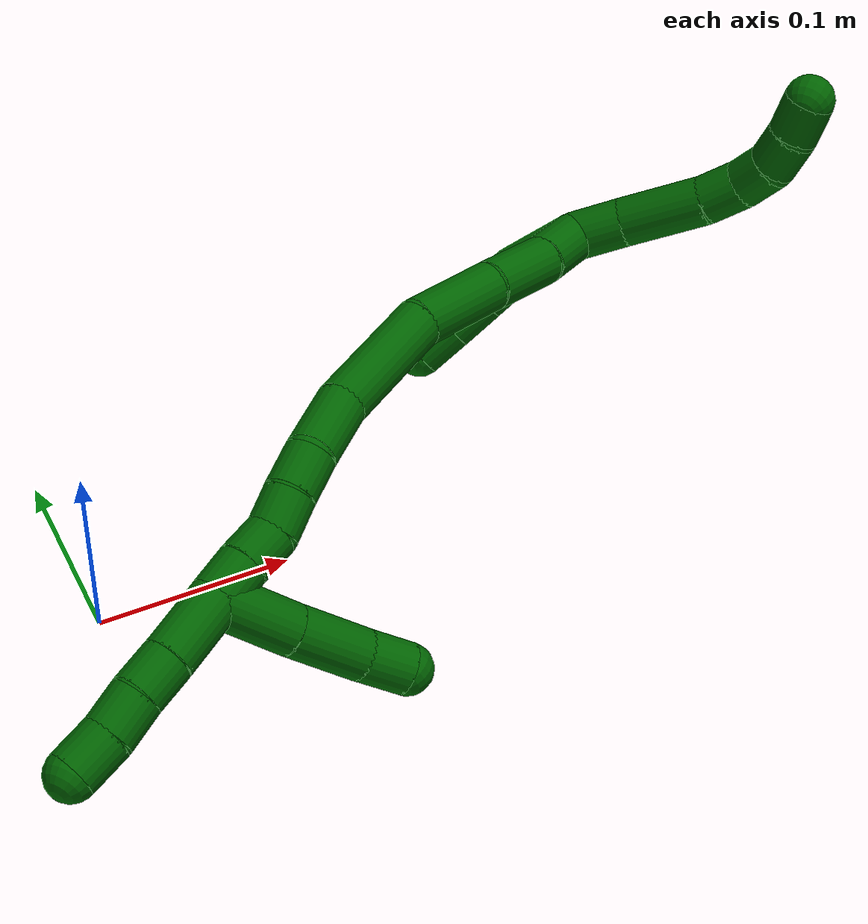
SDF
<sdf version="1.7">
 <world name="default">
  <model name="6">
   <static>0</static>
   <link name="6">
    <collision name="collision-cylinder-e_1_2_8">
     <pose>0.007348 -0.008706 0.006571 0.924258 0.592847 0.301948</pose>
     <geometry><cylinder><radius>0.0125</radius><length>0.026303</length></cylinder></geometry>
     <surface>
      <friction><ode><mu>1.16</mu><mu2>1.16</mu2><slip1>0</slip1><slip2>0</slip2></ode></friction>
      <contact><ode><kp>1e+06</kp><kd>1</kd><max_vel>0</max_vel><min_depth>0.001</min_depth></ode></contact>
     </surface>
    </collision>
    <visual name="visual-cylinder-e_1_2_8">
     <pose>0.007348 -0.008706 0.006571 0.924258 0.592847 0.301948</pose>
     <geometry><cylinder><radius>0.0125</radius><length>0.026303</length></cylinder></geometry>
     <material><ambient>0 0.392157 0.003922 1</ambient></material>
    </visual>
    <collision name="collision-cylinder-e_2_8_9">
     <pose>0.026123 -0.033884 0.021192 1.11623 0.557335 0.353525</pose>
     <geometry><cylinder><radius>0.0125</radius><length>0.043208</length></cylinder></geometry>
     <surface>
      <friction><ode><mu>1.16</mu><mu2>1.16</mu2><slip1>0</slip1><slip2>0</slip2></ode></friction>
      <contact><ode><kp>1e+06</kp><kd>1</kd><max_vel>0</max_vel><min_depth>0.001</min_depth></ode></contact>
     </surface>
    </collision>
    <visual name="visual-cylinder-e_2_8_9">
     <pose>0.026123 -0.033884 0.021192 1.11623 0.557335 0.353525</pose>
     <geometry><cylinder><radius>0.0125</radius><length>0.043208</length></cylinder></geometry>
     <material><ambient>0 0.392157 0.003922 1</ambient></material>
    </visual>
    <collision name="collision-cylinder-e_3_9_10">
     <pose>0.041683 -0.058582 0.033689 1.07522 0.416178 0.250447</pose>
     <geometry><cylinder><radius>0.0125</radius><length>0.020446</length></cylinder></geometry>
     <surface>
      <friction><ode><mu>1.16</mu><mu2>1.16</mu2><slip1>0</slip1><slip2>0</slip2></ode></friction>
      <contact><ode><kp>1e+06</kp><kd>1</kd><max_vel>0</max_vel><min_depth>0.001</min_depth></ode></contact>
     </surface>
    </collision>
    <visual name="visual-cylinder-e_3_9_10">
     <pose>0.041683 -0.058582 0.033689 1.07522 0.416178 0.250447</pose>
     <geometry><cylinder><radius>0.0125</radius><length>0.020446</length></cylinder></geometry>
     <material><ambient>0 0.392157 0.003922 1</ambient></material>
    </visual>
    <collision name="collision-cylinder-e_4_10_11">
     <pose>0.047541 -0.07638 0.04047 1.33151 0.173344 0.13627</pose>
     <geometry><cylinder><radius>0.0125</radius><length>0.020005</length></cylinder></geometry>
     <surface>
      <friction><ode><mu>1.16</mu><mu2>1.16</mu2><slip1>0</slip1><slip2>0</slip2></ode></friction>
      <contact><ode><kp>1e+06</kp><kd>1</kd><max_vel>0</max_vel><min_depth>0.001</min_depth></ode></contact>
     </surface>
    </collision>
    <visual name="visual-cylinder-e_4_10_11">
     <pose>0.047541 -0.07638 0.04047 1.33151 0.173344 0.13627</pose>
     <geometry><cylinder><radius>0.0125</radius><length>0.020005</length></cylinder></geometry>
     <material><ambient>0 0.392157 0.003922 1</ambient></material>
    </visual>
    <collision name="collision-cylinder-e_5_11_12">
     <pose>0.0477 -0.095319 0.045993 1.24275 -0.156939 -0.112478</pose>
     <geometry><cylinder><radius>0.0125</radius><length>0.020037</length></cylinder></geometry>
     <surface>
      <friction><ode><mu>1.16</mu><mu2>1.16</mu2><slip1>0</slip1><slip2>0</slip2></ode></friction>
      <contact><ode><kp>1e+06</kp><kd>1</kd><max_vel>0</max_vel><min_depth>0.001</min_depth></ode></contact>
     </surface>
    </collision>
    <visual name="visual-cylinder-e_5_11_12">
     <pose>0.0477 -0.095319 0.045993 1.24275 -0.156939 -0.112478</pose>
     <geometry><cylinder><radius>0.0125</radius><length>0.020037</length></cylinder></geometry>
     <material><ambient>0 0.392157 0.003922 1</ambient></material>
    </visual>
    <collision name="collision-cylinder-e_6_12_6">
     <pose>0.043222 -0.113322 0.053301 1.12569 -0.29547 -0.187236</pose>
     <geometry><cylinder><radius>0.0125</radius><length>0.020002</length></cylinder></geometry>
     <surface>
      <friction><ode><mu>1.16</mu><mu2>1.16</mu2><slip1>0</slip1><slip2>0</slip2></ode></friction>
      <contact><ode><kp>1e+06</kp><kd>1</kd><max_vel>0</max_vel><min_depth>0.001</min_depth></ode></contact>
     </surface>
    </collision>
    <visual name="visual-cylinder-e_6_12_6">
     <pose>0.043222 -0.113322 0.053301 1.12569 -0.29547 -0.187236</pose>
     <geometry><cylinder><radius>0.0125</radius><length>0.020002</length></cylinder></geometry>
     <material><ambient>0 0.392157 0.003922 1</ambient></material>
    </visual>
    <collision name="collision-cylinder-e_1_2_13">
     <pose>-0.006127 0.013295 -0.00979 -2.20555 -0.355361 0.6827</pose>
     <geometry><cylinder><radius>0.0125</radius><length>0.035222</length></cylinder></geometry>
     <surface>
      <friction><ode><mu>1.16</mu><mu2>1.16</mu2><slip1>0</slip1><slip2>0</slip2></ode></friction>
      <contact><ode><kp>1e+06</kp><kd>1</kd><max_vel>0</max_vel><min_depth>0.001</min_depth></ode></contact>
     </surface>
    </collision>
    <visual name="visual-cylinder-e_1_2_13">
     <pose>-0.006127 0.013295 -0.00979 -2.20555 -0.355361 0.6827</pose>
     <geometry><cylinder><radius>0.0125</radius><length>0.035222</length></cylinder></geometry>
     <material><ambient>0 0.392157 0.003922 1</ambient></material>
    </visual>
    <collision name="collision-cylinder-e_2_13_14">
     <pose>-0.014149 0.03383 -0.027338 -2.39055 -0.176661 0.441951</pose>
     <geometry><cylinder><radius>0.0125</radius><length>0.021559</length></cylinder></geometry>
     <surface>
      <friction><ode><mu>1.16</mu><mu2>1.16</mu2><slip1>0</slip1><slip2>0</slip2></ode></friction>
      <contact><ode><kp>1e+06</kp><kd>1</kd><max_vel>0</max_vel><min_depth>0.001</min_depth></ode></contact>
     </surface>
    </collision>
    <visual name="visual-cylinder-e_2_13_14">
     <pose>-0.014149 0.03383 -0.027338 -2.39055 -0.176661 0.441951</pose>
     <geometry><cylinder><radius>0.0125</radius><length>0.021559</length></cylinder></geometry>
     <material><ambient>0 0.392157 0.003922 1</ambient></material>
    </visual>
    <collision name="collision-cylinder-e_3_14_15">
     <pose>-0.017993 0.048452 -0.043025 -2.39211 -0.178085 0.446398</pose>
     <geometry><cylinder><radius>0.0125</radius><length>0.022014</length></cylinder></geometry>
     <surface>
      <friction><ode><mu>1.16</mu><mu2>1.16</mu2><slip1>0</slip1><slip2>0</slip2></ode></friction>
      <contact><ode><kp>1e+06</kp><kd>1</kd><max_vel>0</max_vel><min_depth>0.001</min_depth></ode></contact>
     </surface>
    </collision>
    <visual name="visual-cylinder-e_3_14_15">
     <pose>-0.017993 0.048452 -0.043025 -2.39211 -0.178085 0.446398</pose>
     <geometry><cylinder><radius>0.0125</radius><length>0.022014</length></cylinder></geometry>
     <material><ambient>0 0.392157 0.003922 1</ambient></material>
    </visual>
    <collision name="collision-cylinder-e_4_15_5">
     <pose>-0.02194 0.063008 -0.0585 -2.3813 -0.189429 0.466821</pose>
     <geometry><cylinder><radius>0.0125</radius><length>0.021206</length></cylinder></geometry>
     <surface>
      <friction><ode><mu>1.16</mu><mu2>1.16</mu2><slip1>0</slip1><slip2>0</slip2></ode></friction>
      <contact><ode><kp>1e+06</kp><kd>1</kd><max_vel>0</max_vel><min_depth>0.001</min_depth></ode></contact>
     </surface>
    </collision>
    <visual name="visual-cylinder-e_4_15_5">
     <pose>-0.02194 0.063008 -0.0585 -2.3813 -0.189429 0.466821</pose>
     <geometry><cylinder><radius>0.0125</radius><length>0.021206</length></cylinder></geometry>
     <material><ambient>0 0.392157 0.003922 1</ambient></material>
    </visual>
    <collision name="collision-cylinder-e_1_2_16">
     <pose>-0.004446 -0.003446 -0.014784 2.9126 -0.284945 -1.79002</pose>
     <geometry><cylinder><radius>0.0125</radius><length>0.031636</length></cylinder></geometry>
     <surface>
      <friction><ode><mu>1.16</mu><mu2>1.16</mu2><slip1>0</slip1><slip2>0</slip2></ode></friction>
      <contact><ode><kp>1e+06</kp><kd>1</kd><max_vel>0</max_vel><min_depth>0.001</min_depth></ode></contact>
     </surface>
    </collision>
    <visual name="visual-cylinder-e_1_2_16">
     <pose>-0.004446 -0.003446 -0.014784 2.9126 -0.284945 -1.79002</pose>
     <geometry><cylinder><radius>0.0125</radius><length>0.031636</length></cylinder></geometry>
     <material><ambient>0 0.392157 0.003922 1</ambient></material>
    </visual>
    <collision name="collision-cylinder-e_2_16_17">
     <pose>-0.017241 -0.010152 -0.047857 2.96518 -0.422314 -2.35902</pose>
     <geometry><cylinder><radius>0.0125</radius><length>0.040734</length></cylinder></geometry>
     <surface>
      <friction><ode><mu>1.16</mu><mu2>1.16</mu2><slip1>0</slip1><slip2>0</slip2></ode></friction>
      <contact><ode><kp>1e+06</kp><kd>1</kd><max_vel>0</max_vel><min_depth>0.001</min_depth></ode></contact>
     </surface>
    </collision>
    <visual name="visual-cylinder-e_2_16_17">
     <pose>-0.017241 -0.010152 -0.047857 2.96518 -0.422314 -2.35902</pose>
     <geometry><cylinder><radius>0.0125</radius><length>0.040734</length></cylinder></geometry>
     <material><ambient>0 0.392157 0.003922 1</ambient></material>
    </visual>
    <collision name="collision-cylinder-e_3_17_18">
     <pose>-0.035509 -0.013745 -0.087639 3.12614 -0.432394 -3.07124</pose>
     <geometry><cylinder><radius>0.0125</radius><length>0.047349</length></cylinder></geometry>
     <surface>
      <friction><ode><mu>1.16</mu><mu2>1.16</mu2><slip1>0</slip1><slip2>0</slip2></ode></friction>
      <contact><ode><kp>1e+06</kp><kd>1</kd><max_vel>0</max_vel><min_depth>0.001</min_depth></ode></contact>
     </surface>
    </collision>
    <visual name="visual-cylinder-e_3_17_18">
     <pose>-0.035509 -0.013745 -0.087639 3.12614 -0.432394 -3.07124</pose>
     <geometry><cylinder><radius>0.0125</radius><length>0.047349</length></cylinder></geometry>
     <material><ambient>0 0.392157 0.003922 1</ambient></material>
    </visual>
    <collision name="collision-cylinder-e_4_18_19">
     <pose>-0.050494 -0.014428 -0.14053 3.13042 -0.159892 -3.00241</pose>
     <geometry><cylinder><radius>0.0125</radius><length>0.06361</length></cylinder></geometry>
     <surface>
      <friction><ode><mu>1.16</mu><mu2>1.16</mu2><slip1>0</slip1><slip2>0</slip2></ode></friction>
      <contact><ode><kp>1e+06</kp><kd>1</kd><max_vel>0</max_vel><min_depth>0.001</min_depth></ode></contact>
     </surface>
    </collision>
    <visual name="visual-cylinder-e_4_18_19">
     <pose>-0.050494 -0.014428 -0.14053 3.13042 -0.159892 -3.00241</pose>
     <geometry><cylinder><radius>0.0125</radius><length>0.06361</length></cylinder></geometry>
     <material><ambient>0 0.392157 0.003922 1</ambient></material>
    </visual>
    <collision name="collision-cylinder-e_5_19_20">
     <pose>-0.05558 -0.01739 -0.189051 2.99021 -0.001317 -0.017372</pose>
     <geometry><cylinder><radius>0.0125</radius><length>0.034643</length></cylinder></geometry>
     <surface>
      <friction><ode><mu>1.16</mu><mu2>1.16</mu2><slip1>0</slip1><slip2>0</slip2></ode></friction>
      <contact><ode><kp>1e+06</kp><kd>1</kd><max_vel>0</max_vel><min_depth>0.001</min_depth></ode></contact>
     </surface>
    </collision>
    <visual name="visual-cylinder-e_5_19_20">
     <pose>-0.05558 -0.01739 -0.189051 2.99021 -0.001317 -0.017372</pose>
     <geometry><cylinder><radius>0.0125</radius><length>0.034643</length></cylinder></geometry>
     <material><ambient>0 0.392157 0.003922 1</ambient></material>
    </visual>
    <collision name="collision-cylinder-e_6_20_21">
     <pose>-0.054535 -0.019037 -0.216967 -3.0524 0.098252 -1.66751</pose>
     <geometry><cylinder><radius>0.0125</radius><length>0.021776</length></cylinder></geometry>
     <surface>
      <friction><ode><mu>1.16</mu><mu2>1.16</mu2><slip1>0</slip1><slip2>0</slip2></ode></friction>
      <contact><ode><kp>1e+06</kp><kd>1</kd><max_vel>0</max_vel><min_depth>0.001</min_depth></ode></contact>
     </surface>
    </collision>
    <visual name="visual-cylinder-e_6_20_21">
     <pose>-0.054535 -0.019037 -0.216967 -3.0524 0.098252 -1.66751</pose>
     <geometry><cylinder><radius>0.0125</radius><length>0.021776</length></cylinder></geometry>
     <material><ambient>0 0.392157 0.003922 1</ambient></material>
    </visual>
    <collision name="collision-cylinder-e_7_21_22">
     <pose>-0.051795 -0.016079 -0.23742 -2.93811 0.167925 -1.37883</pose>
     <geometry><cylinder><radius>0.0125</radius><length>0.020011</length></cylinder></geometry>
     <surface>
      <friction><ode><mu>1.16</mu><mu2>1.16</mu2><slip1>0</slip1><slip2>0</slip2></ode></friction>
      <contact><ode><kp>1e+06</kp><kd>1</kd><max_vel>0</max_vel><min_depth>0.001</min_depth></ode></contact>
     </surface>
    </collision>
    <visual name="visual-cylinder-e_7_21_22">
     <pose>-0.051795 -0.016079 -0.23742 -2.93811 0.167925 -1.37883</pose>
     <geometry><cylinder><radius>0.0125</radius><length>0.020011</length></cylinder></geometry>
     <material><ambient>0 0.392157 0.003922 1</ambient></material>
    </visual>
    <collision name="collision-cylinder-e_8_22_23">
     <pose>-0.051643 -0.012892 -0.256932 -3.02108 -0.152034 1.80181</pose>
     <geometry><cylinder><radius>0.0125</radius><length>0.020076</length></cylinder></geometry>
     <surface>
      <friction><ode><mu>1.16</mu><mu2>1.16</mu2><slip1>0</slip1><slip2>0</slip2></ode></friction>
      <contact><ode><kp>1e+06</kp><kd>1</kd><max_vel>0</max_vel><min_depth>0.001</min_depth></ode></contact>
     </surface>
    </collision>
    <visual name="visual-cylinder-e_8_22_23">
     <pose>-0.051643 -0.012892 -0.256932 -3.02108 -0.152034 1.80181</pose>
     <geometry><cylinder><radius>0.0125</radius><length>0.020076</length></cylinder></geometry>
     <material><ambient>0 0.392157 0.003922 1</ambient></material>
    </visual>
    <collision name="collision-cylinder-e_9_23_1">
     <pose>-0.053989 -0.010463 -0.276754 -3.01824 -0.081962 1.17228</pose>
     <geometry><cylinder><radius>0.0125</radius><length>0.020165</length></cylinder></geometry>
     <surface>
      <friction><ode><mu>1.16</mu><mu2>1.16</mu2><slip1>0</slip1><slip2>0</slip2></ode></friction>
      <contact><ode><kp>1e+06</kp><kd>1</kd><max_vel>0</max_vel><min_depth>0.001</min_depth></ode></contact>
     </surface>
    </collision>
    <visual name="visual-cylinder-e_9_23_1">
     <pose>-0.053989 -0.010463 -0.276754 -3.01824 -0.081962 1.17228</pose>
     <geometry><cylinder><radius>0.0125</radius><length>0.020165</length></cylinder></geometry>
     <material><ambient>0 0.392157 0.003922 1</ambient></material>
    </visual>
    <collision name="collision-cylinder-e_1_1_24">
     <pose>-0.03615 -0.006227 -0.28036 -0.440342 1.21021 -0.307148</pose>
     <geometry><cylinder><radius>0.0125</radius><length>0.039893</length></cylinder></geometry>
     <surface>
      <friction><ode><mu>1.16</mu><mu2>1.16</mu2><slip1>0</slip1><slip2>0</slip2></ode></friction>
      <contact><ode><kp>1e+06</kp><kd>1</kd><max_vel>0</max_vel><min_depth>0.001</min_depth></ode></contact>
     </surface>
    </collision>
    <visual name="visual-cylinder-e_1_1_24">
     <pose>-0.03615 -0.006227 -0.28036 -0.440342 1.21021 -0.307148</pose>
     <geometry><cylinder><radius>0.0125</radius><length>0.039893</length></cylinder></geometry>
     <material><ambient>0 0.392157 0.003922 1</ambient></material>
    </visual>
    <collision name="collision-cylinder-e_2_24_25">
     <pose>-0.00027 -0.000421 -0.267269 -0.395297 1.17042 -0.263862</pose>
     <geometry><cylinder><radius>0.0125</radius><length>0.03739</length></cylinder></geometry>
     <surface>
      <friction><ode><mu>1.16</mu><mu2>1.16</mu2><slip1>0</slip1><slip2>0</slip2></ode></friction>
      <contact><ode><kp>1e+06</kp><kd>1</kd><max_vel>0</max_vel><min_depth>0.001</min_depth></ode></contact>
     </surface>
    </collision>
    <visual name="visual-cylinder-e_2_24_25">
     <pose>-0.00027 -0.000421 -0.267269 -0.395297 1.17042 -0.263862</pose>
     <geometry><cylinder><radius>0.0125</radius><length>0.03739</length></cylinder></geometry>
     <material><ambient>0 0.392157 0.003922 1</ambient></material>
    </visual>
    <collision name="collision-cylinder-e_3_25_4">
     <pose>0.027555 0.002769 -0.256503 -0.094778 1.20534 -0.065239</pose>
     <geometry><cylinder><radius>0.0125</radius><length>0.022717</length></cylinder></geometry>
     <surface>
      <friction><ode><mu>1.16</mu><mu2>1.16</mu2><slip1>0</slip1><slip2>0</slip2></ode></friction>
      <contact><ode><kp>1e+06</kp><kd>1</kd><max_vel>0</max_vel><min_depth>0.001</min_depth></ode></contact>
     </surface>
    </collision>
    <visual name="visual-cylinder-e_3_25_4">
     <pose>0.027555 0.002769 -0.256503 -0.094778 1.20534 -0.065239</pose>
     <geometry><cylinder><radius>0.0125</radius><length>0.022717</length></cylinder></geometry>
     <material><ambient>0 0.392157 0.003922 1</ambient></material>
    </visual>
    <collision name="collision-cylinder-e_1_1_26">
     <pose>-0.056216 -0.007489 -0.304304 -3.04304 -0.079238 1.35405</pose>
     <geometry><cylinder><radius>0.0125</radius><length>0.035437</length></cylinder></geometry>
     <surface>
      <friction><ode><mu>1.16</mu><mu2>1.16</mu2><slip1>0</slip1><slip2>0</slip2></ode></friction>
      <contact><ode><kp>1e+06</kp><kd>1</kd><max_vel>0</max_vel><min_depth>0.001</min_depth></ode></contact>
     </surface>
    </collision>
    <visual name="visual-cylinder-e_1_1_26">
     <pose>-0.056216 -0.007489 -0.304304 -3.04304 -0.079238 1.35405</pose>
     <geometry><cylinder><radius>0.0125</radius><length>0.035437</length></cylinder></geometry>
     <material><ambient>0 0.392157 0.003922 1</ambient></material>
    </visual>
    <collision name="collision-cylinder-e_2_26_27">
     <pose>-0.058742 -0.004222 -0.332315 -2.99613 -0.106103 1.25959</pose>
     <geometry><cylinder><radius>0.0125</radius><length>0.02121</length></cylinder></geometry>
     <surface>
      <friction><ode><mu>1.16</mu><mu2>1.16</mu2><slip1>0</slip1><slip2>0</slip2></ode></friction>
      <contact><ode><kp>1e+06</kp><kd>1</kd><max_vel>0</max_vel><min_depth>0.001</min_depth></ode></contact>
     </surface>
    </collision>
    <visual name="visual-cylinder-e_2_26_27">
     <pose>-0.058742 -0.004222 -0.332315 -2.99613 -0.106103 1.25959</pose>
     <geometry><cylinder><radius>0.0125</radius><length>0.02121</length></cylinder></geometry>
     <material><ambient>0 0.392157 0.003922 1</ambient></material>
    </visual>
    <collision name="collision-cylinder-e_3_27_28">
     <pose>-0.060059 -0.000364 -0.353038 -2.91894 -0.018405 0.164275</pose>
     <geometry><cylinder><radius>0.0125</radius><length>0.021103</length></cylinder></geometry>
     <surface>
      <friction><ode><mu>1.16</mu><mu2>1.16</mu2><slip1>0</slip1><slip2>0</slip2></ode></friction>
      <contact><ode><kp>1e+06</kp><kd>1</kd><max_vel>0</max_vel><min_depth>0.001</min_depth></ode></contact>
     </surface>
    </collision>
    <visual name="visual-cylinder-e_3_27_28">
     <pose>-0.060059 -0.000364 -0.353038 -2.91894 -0.018405 0.164275</pose>
     <geometry><cylinder><radius>0.0125</radius><length>0.021103</length></cylinder></geometry>
     <material><ambient>0 0.392157 0.003922 1</ambient></material>
    </visual>
    <collision name="collision-cylinder-e_4_28_3">
     <pose>-0.06201 0.004399 -0.37404 -2.91818 -0.158565 1.2325</pose>
     <geometry><cylinder><radius>0.0125</radius><length>0.02225</length></cylinder></geometry>
     <surface>
      <friction><ode><mu>1.16</mu><mu2>1.16</mu2><slip1>0</slip1><slip2>0</slip2></ode></friction>
      <contact><ode><kp>1e+06</kp><kd>1</kd><max_vel>0</max_vel><min_depth>0.001</min_depth></ode></contact>
     </surface>
    </collision>
    <visual name="visual-cylinder-e_4_28_3">
     <pose>-0.06201 0.004399 -0.37404 -2.91818 -0.158565 1.2325</pose>
     <geometry><cylinder><radius>0.0125</radius><length>0.02225</length></cylinder></geometry>
     <material><ambient>0 0.392157 0.003922 1</ambient></material>
    </visual>
    <collision name="collision-sphere-3">
     <pose>-0.063767 0.006833 -0.384752 0 -0 0</pose>
     <geometry><sphere><radius>0.0125</radius></sphere></geometry>
     <surface>
      <friction><ode><mu>1.16</mu><mu2>1.16</mu2><slip1>0</slip1><slip2>0</slip2></ode></friction>
      <contact><ode><kp>1e+06</kp><kd>1</kd><max_vel>0</max_vel><min_depth>0.001</min_depth></ode></contact>
     </surface>
    </collision>
    <visual name="visual-sphere-3">
     <pose>-0.063767 0.006833 -0.384752 0 -0 0</pose>
     <geometry><sphere><radius>0.0125</radius></sphere></geometry>
     <material><ambient>0 0.392157 0.003922 1</ambient></material>
    </visual>
    <collision name="collision-sphere-28">
     <pose>-0.060254 0.001965 -0.363328 0 -0 0</pose>
     <geometry><sphere><radius>0.0125</radius></sphere></geometry>
     <surface>
      <friction><ode><mu>1.16</mu><mu2>1.16</mu2><slip1>0</slip1><slip2>0</slip2></ode></friction>
      <contact><ode><kp>1e+06</kp><kd>1</kd><max_vel>0</max_vel><min_depth>0.001</min_depth></ode></contact>
     </surface>
    </collision>
    <visual name="visual-sphere-28">
     <pose>-0.060254 0.001965 -0.363328 0 -0 0</pose>
     <geometry><sphere><radius>0.0125</radius></sphere></geometry>
     <material><ambient>0 0.392157 0.003922 1</ambient></material>
    </visual>
    <collision name="collision-sphere-27">
     <pose>-0.059865 -0.002694 -0.342749 0 -0 0</pose>
     <geometry><sphere><radius>0.0125</radius></sphere></geometry>
     <surface>
      <friction><ode><mu>1.16</mu><mu2>1.16</mu2><slip1>0</slip1><slip2>0</slip2></ode></friction>
      <contact><ode><kp>1e+06</kp><kd>1</kd><max_vel>0</max_vel><min_depth>0.001</min_depth></ode></contact>
     </surface>
    </collision>
    <visual name="visual-sphere-27">
     <pose>-0.059865 -0.002694 -0.342749 0 -0 0</pose>
     <geometry><sphere><radius>0.0125</radius></sphere></geometry>
     <material><ambient>0 0.392157 0.003922 1</ambient></material>
    </visual>
    <collision name="collision-sphere-26">
     <pose>-0.057619 -0.005751 -0.321881 0 -0 0</pose>
     <geometry><sphere><radius>0.0125</radius></sphere></geometry>
     <surface>
      <friction><ode><mu>1.16</mu><mu2>1.16</mu2><slip1>0</slip1><slip2>0</slip2></ode></friction>
      <contact><ode><kp>1e+06</kp><kd>1</kd><max_vel>0</max_vel><min_depth>0.001</min_depth></ode></contact>
     </surface>
    </collision>
    <visual name="visual-sphere-26">
     <pose>-0.057619 -0.005751 -0.321881 0 -0 0</pose>
     <geometry><sphere><radius>0.0125</radius></sphere></geometry>
     <material><ambient>0 0.392157 0.003922 1</ambient></material>
    </visual>
    <collision name="collision-sphere-4">
     <pose>0.038163 0.003153 -0.252462 0 -0 0</pose>
     <geometry><sphere><radius>0.0125</radius></sphere></geometry>
     <surface>
      <friction><ode><mu>1.16</mu><mu2>1.16</mu2><slip1>0</slip1><slip2>0</slip2></ode></friction>
      <contact><ode><kp>1e+06</kp><kd>1</kd><max_vel>0</max_vel><min_depth>0.001</min_depth></ode></contact>
     </surface>
    </collision>
    <visual name="visual-sphere-4">
     <pose>0.038163 0.003153 -0.252462 0 -0 0</pose>
     <geometry><sphere><radius>0.0125</radius></sphere></geometry>
     <material><ambient>0 0.392157 0.003922 1</ambient></material>
    </visual>
    <collision name="collision-sphere-25">
     <pose>0.016947 0.002385 -0.260544 0 -0 0</pose>
     <geometry><sphere><radius>0.0125</radius></sphere></geometry>
     <surface>
      <friction><ode><mu>1.16</mu><mu2>1.16</mu2><slip1>0</slip1><slip2>0</slip2></ode></friction>
      <contact><ode><kp>1e+06</kp><kd>1</kd><max_vel>0</max_vel><min_depth>0.001</min_depth></ode></contact>
     </surface>
    </collision>
    <visual name="visual-sphere-25">
     <pose>0.016947 0.002385 -0.260544 0 -0 0</pose>
     <geometry><sphere><radius>0.0125</radius></sphere></geometry>
     <material><ambient>0 0.392157 0.003922 1</ambient></material>
    </visual>
    <collision name="collision-sphere-24">
     <pose>-0.017486 -0.003227 -0.273994 0 -0 0</pose>
     <geometry><sphere><radius>0.0125</radius></sphere></geometry>
     <surface>
      <friction><ode><mu>1.16</mu><mu2>1.16</mu2><slip1>0</slip1><slip2>0</slip2></ode></friction>
      <contact><ode><kp>1e+06</kp><kd>1</kd><max_vel>0</max_vel><min_depth>0.001</min_depth></ode></contact>
     </surface>
    </collision>
    <visual name="visual-sphere-24">
     <pose>-0.017486 -0.003227 -0.273994 0 -0 0</pose>
     <geometry><sphere><radius>0.0125</radius></sphere></geometry>
     <material><ambient>0 0.392157 0.003922 1</ambient></material>
    </visual>
    <collision name="collision-sphere-1">
     <pose>-0.054814 -0.009227 -0.286726 0 -0 0</pose>
     <geometry><sphere><radius>0.0125</radius></sphere></geometry>
     <surface>
      <friction><ode><mu>1.16</mu><mu2>1.16</mu2><slip1>0</slip1><slip2>0</slip2></ode></friction>
      <contact><ode><kp>1e+06</kp><kd>1</kd><max_vel>0</max_vel><min_depth>0.001</min_depth></ode></contact>
     </surface>
    </collision>
    <visual name="visual-sphere-1">
     <pose>-0.054814 -0.009227 -0.286726 0 -0 0</pose>
     <geometry><sphere><radius>0.0125</radius></sphere></geometry>
     <material><ambient>0 0.392157 0.003922 1</ambient></material>
    </visual>
    <collision name="collision-sphere-23">
     <pose>-0.053163 -0.0117 -0.266782 0 -0 0</pose>
     <geometry><sphere><radius>0.0125</radius></sphere></geometry>
     <surface>
      <friction><ode><mu>1.16</mu><mu2>1.16</mu2><slip1>0</slip1><slip2>0</slip2></ode></friction>
      <contact><ode><kp>1e+06</kp><kd>1</kd><max_vel>0</max_vel><min_depth>0.001</min_depth></ode></contact>
     </surface>
    </collision>
    <visual name="visual-sphere-23">
     <pose>-0.053163 -0.0117 -0.266782 0 -0 0</pose>
     <geometry><sphere><radius>0.0125</radius></sphere></geometry>
     <material><ambient>0 0.392157 0.003922 1</ambient></material>
    </visual>
    <collision name="collision-sphere-22">
     <pose>-0.050123 -0.014085 -0.247082 0 -0 0</pose>
     <geometry><sphere><radius>0.0125</radius></sphere></geometry>
     <surface>
      <friction><ode><mu>1.16</mu><mu2>1.16</mu2><slip1>0</slip1><slip2>0</slip2></ode></friction>
      <contact><ode><kp>1e+06</kp><kd>1</kd><max_vel>0</max_vel><min_depth>0.001</min_depth></ode></contact>
     </surface>
    </collision>
    <visual name="visual-sphere-22">
     <pose>-0.050123 -0.014085 -0.247082 0 -0 0</pose>
     <geometry><sphere><radius>0.0125</radius></sphere></geometry>
     <material><ambient>0 0.392157 0.003922 1</ambient></material>
    </visual>
    <collision name="collision-sphere-21">
     <pose>-0.053467 -0.018072 -0.227759 0 -0 0</pose>
     <geometry><sphere><radius>0.0125</radius></sphere></geometry>
     <surface>
      <friction><ode><mu>1.16</mu><mu2>1.16</mu2><slip1>0</slip1><slip2>0</slip2></ode></friction>
      <contact><ode><kp>1e+06</kp><kd>1</kd><max_vel>0</max_vel><min_depth>0.001</min_depth></ode></contact>
     </surface>
    </collision>
    <visual name="visual-sphere-21">
     <pose>-0.053467 -0.018072 -0.227759 0 -0 0</pose>
     <geometry><sphere><radius>0.0125</radius></sphere></geometry>
     <material><ambient>0 0.392157 0.003922 1</ambient></material>
    </visual>
    <collision name="collision-sphere-12">
     <pose>0.046134 -0.104687 0.049182 0 -0 0</pose>
     <geometry><sphere><radius>0.0125</radius></sphere></geometry>
     <surface>
      <friction><ode><mu>1.16</mu><mu2>1.16</mu2><slip1>0</slip1><slip2>0</slip2></ode></friction>
      <contact><ode><kp>1e+06</kp><kd>1</kd><max_vel>0</max_vel><min_depth>0.001</min_depth></ode></contact>
     </surface>
    </collision>
    <visual name="visual-sphere-12">
     <pose>0.046134 -0.104687 0.049182 0 -0 0</pose>
     <geometry><sphere><radius>0.0125</radius></sphere></geometry>
     <material><ambient>0 0.392157 0.003922 1</ambient></material>
    </visual>
    <collision name="collision-sphere-11">
     <pose>0.049266 -0.085952 0.042805 0 -0 0</pose>
     <geometry><sphere><radius>0.0125</radius></sphere></geometry>
     <surface>
      <friction><ode><mu>1.16</mu><mu2>1.16</mu2><slip1>0</slip1><slip2>0</slip2></ode></friction>
      <contact><ode><kp>1e+06</kp><kd>1</kd><max_vel>0</max_vel><min_depth>0.001</min_depth></ode></contact>
     </surface>
    </collision>
    <visual name="visual-sphere-11">
     <pose>0.049266 -0.085952 0.042805 0 -0 0</pose>
     <geometry><sphere><radius>0.0125</radius></sphere></geometry>
     <material><ambient>0 0.392157 0.003922 1</ambient></material>
    </visual>
    <collision name="collision-sphere-10">
     <pose>0.045815 -0.066808 0.038135 0 -0 0</pose>
     <geometry><sphere><radius>0.0125</radius></sphere></geometry>
     <surface>
      <friction><ode><mu>1.16</mu><mu2>1.16</mu2><slip1>0</slip1><slip2>0</slip2></ode></friction>
      <contact><ode><kp>1e+06</kp><kd>1</kd><max_vel>0</max_vel><min_depth>0.001</min_depth></ode></contact>
     </surface>
    </collision>
    <visual name="visual-sphere-10">
     <pose>0.045815 -0.066808 0.038135 0 -0 0</pose>
     <geometry><sphere><radius>0.0125</radius></sphere></geometry>
     <material><ambient>0 0.392157 0.003922 1</ambient></material>
    </visual>
    <collision name="collision-sphere-9">
     <pose>0.03755 -0.050357 0.029242 0 -0 0</pose>
     <geometry><sphere><radius>0.0125</radius></sphere></geometry>
     <surface>
      <friction><ode><mu>1.16</mu><mu2>1.16</mu2><slip1>0</slip1><slip2>0</slip2></ode></friction>
      <contact><ode><kp>1e+06</kp><kd>1</kd><max_vel>0</max_vel><min_depth>0.001</min_depth></ode></contact>
     </surface>
    </collision>
    <visual name="visual-sphere-9">
     <pose>0.03755 -0.050357 0.029242 0 -0 0</pose>
     <geometry><sphere><radius>0.0125</radius></sphere></geometry>
     <material><ambient>0 0.392157 0.003922 1</ambient></material>
    </visual>
    <collision name="collision-sphere-2">
     <geometry><sphere><radius>0.0125</radius></sphere></geometry>
     <surface>
      <friction><ode><mu>1.16</mu><mu2>1.16</mu2><slip1>0</slip1><slip2>0</slip2></ode></friction>
      <contact><ode><kp>1e+06</kp><kd>1</kd><max_vel>0</max_vel><min_depth>0.001</min_depth></ode></contact>
     </surface>
    </collision>
    <visual name="visual-sphere-2">
     <geometry><sphere><radius>0.0125</radius></sphere></geometry>
     <material><ambient>0 0.392157 0.003922 1</ambient></material>
    </visual>
    <collision name="collision-sphere-19">
     <pose>-0.055558 -0.014778 -0.171927 0 -0 0</pose>
     <geometry><sphere><radius>0.0125</radius></sphere></geometry>
     <surface>
      <friction><ode><mu>1.16</mu><mu2>1.16</mu2><slip1>0</slip1><slip2>0</slip2></ode></friction>
      <contact><ode><kp>1e+06</kp><kd>1</kd><max_vel>0</max_vel><min_depth>0.001</min_depth></ode></contact>
     </surface>
    </collision>
    <visual name="visual-sphere-19">
     <pose>-0.055558 -0.014778 -0.171927 0 -0 0</pose>
     <geometry><sphere><radius>0.0125</radius></sphere></geometry>
     <material><ambient>0 0.392157 0.003922 1</ambient></material>
    </visual>
    <collision name="collision-sphere-8">
     <pose>0.014696 -0.017412 0.013142 0 -0 0</pose>
     <geometry><sphere><radius>0.0125</radius></sphere></geometry>
     <surface>
      <friction><ode><mu>1.16</mu><mu2>1.16</mu2><slip1>0</slip1><slip2>0</slip2></ode></friction>
      <contact><ode><kp>1e+06</kp><kd>1</kd><max_vel>0</max_vel><min_depth>0.001</min_depth></ode></contact>
     </surface>
    </collision>
    <visual name="visual-sphere-8">
     <pose>0.014696 -0.017412 0.013142 0 -0 0</pose>
     <geometry><sphere><radius>0.0125</radius></sphere></geometry>
     <material><ambient>0 0.392157 0.003922 1</ambient></material>
    </visual>
    <collision name="collision-sphere-6">
     <pose>0.04031 -0.121957 0.05742 0 -0 0</pose>
     <geometry><sphere><radius>0.0125</radius></sphere></geometry>
     <surface>
      <friction><ode><mu>1.16</mu><mu2>1.16</mu2><slip1>0</slip1><slip2>0</slip2></ode></friction>
      <contact><ode><kp>1e+06</kp><kd>1</kd><max_vel>0</max_vel><min_depth>0.001</min_depth></ode></contact>
     </surface>
    </collision>
    <visual name="visual-sphere-6">
     <pose>0.04031 -0.121957 0.05742 0 -0 0</pose>
     <geometry><sphere><radius>0.0125</radius></sphere></geometry>
     <material><ambient>0 0.392157 0.003922 1</ambient></material>
    </visual>
    <collision name="collision-sphere-13">
     <pose>-0.012255 0.026589 -0.019581 0 -0 0</pose>
     <geometry><sphere><radius>0.0125</radius></sphere></geometry>
     <surface>
      <friction><ode><mu>1.16</mu><mu2>1.16</mu2><slip1>0</slip1><slip2>0</slip2></ode></friction>
      <contact><ode><kp>1e+06</kp><kd>1</kd><max_vel>0</max_vel><min_depth>0.001</min_depth></ode></contact>
     </surface>
    </collision>
    <visual name="visual-sphere-13">
     <pose>-0.012255 0.026589 -0.019581 0 -0 0</pose>
     <geometry><sphere><radius>0.0125</radius></sphere></geometry>
     <material><ambient>0 0.392157 0.003922 1</ambient></material>
    </visual>
    <collision name="collision-sphere-14">
     <pose>-0.016043 0.041072 -0.035095 0 -0 0</pose>
     <geometry><sphere><radius>0.0125</radius></sphere></geometry>
     <surface>
      <friction><ode><mu>1.16</mu><mu2>1.16</mu2><slip1>0</slip1><slip2>0</slip2></ode></friction>
      <contact><ode><kp>1e+06</kp><kd>1</kd><max_vel>0</max_vel><min_depth>0.001</min_depth></ode></contact>
     </surface>
    </collision>
    <visual name="visual-sphere-14">
     <pose>-0.016043 0.041072 -0.035095 0 -0 0</pose>
     <geometry><sphere><radius>0.0125</radius></sphere></geometry>
     <material><ambient>0 0.392157 0.003922 1</ambient></material>
    </visual>
    <collision name="collision-sphere-15">
     <pose>-0.019943 0.055832 -0.050955 0 -0 0</pose>
     <geometry><sphere><radius>0.0125</radius></sphere></geometry>
     <surface>
      <friction><ode><mu>1.16</mu><mu2>1.16</mu2><slip1>0</slip1><slip2>0</slip2></ode></friction>
      <contact><ode><kp>1e+06</kp><kd>1</kd><max_vel>0</max_vel><min_depth>0.001</min_depth></ode></contact>
     </surface>
    </collision>
    <visual name="visual-sphere-15">
     <pose>-0.019943 0.055832 -0.050955 0 -0 0</pose>
     <geometry><sphere><radius>0.0125</radius></sphere></geometry>
     <material><ambient>0 0.392157 0.003922 1</ambient></material>
    </visual>
    <collision name="collision-sphere-5">
     <pose>-0.023936 0.070184 -0.066046 0 -0 0</pose>
     <geometry><sphere><radius>0.0125</radius></sphere></geometry>
     <surface>
      <friction><ode><mu>1.16</mu><mu2>1.16</mu2><slip1>0</slip1><slip2>0</slip2></ode></friction>
      <contact><ode><kp>1e+06</kp><kd>1</kd><max_vel>0</max_vel><min_depth>0.001</min_depth></ode></contact>
     </surface>
    </collision>
    <visual name="visual-sphere-5">
     <pose>-0.023936 0.070184 -0.066046 0 -0 0</pose>
     <geometry><sphere><radius>0.0125</radius></sphere></geometry>
     <material><ambient>0 0.392157 0.003922 1</ambient></material>
    </visual>
    <collision name="collision-sphere-16">
     <pose>-0.008893 -0.006892 -0.029568 0 -0 0</pose>
     <geometry><sphere><radius>0.0125</radius></sphere></geometry>
     <surface>
      <friction><ode><mu>1.16</mu><mu2>1.16</mu2><slip1>0</slip1><slip2>0</slip2></ode></friction>
      <contact><ode><kp>1e+06</kp><kd>1</kd><max_vel>0</max_vel><min_depth>0.001</min_depth></ode></contact>
     </surface>
    </collision>
    <visual name="visual-sphere-16">
     <pose>-0.008893 -0.006892 -0.029568 0 -0 0</pose>
     <geometry><sphere><radius>0.0125</radius></sphere></geometry>
     <material><ambient>0 0.392157 0.003922 1</ambient></material>
    </visual>
    <collision name="collision-sphere-17">
     <pose>-0.025589 -0.013412 -0.066146 0 -0 0</pose>
     <geometry><sphere><radius>0.0125</radius></sphere></geometry>
     <surface>
      <friction><ode><mu>1.16</mu><mu2>1.16</mu2><slip1>0</slip1><slip2>0</slip2></ode></friction>
      <contact><ode><kp>1e+06</kp><kd>1</kd><max_vel>0</max_vel><min_depth>0.001</min_depth></ode></contact>
     </surface>
    </collision>
    <visual name="visual-sphere-17">
     <pose>-0.025589 -0.013412 -0.066146 0 -0 0</pose>
     <geometry><sphere><radius>0.0125</radius></sphere></geometry>
     <material><ambient>0 0.392157 0.003922 1</ambient></material>
    </visual>
    <collision name="collision-sphere-18">
     <pose>-0.04543 -0.014077 -0.109132 0 -0 0</pose>
     <geometry><sphere><radius>0.0125</radius></sphere></geometry>
     <surface>
      <friction><ode><mu>1.16</mu><mu2>1.16</mu2><slip1>0</slip1><slip2>0</slip2></ode></friction>
      <contact><ode><kp>1e+06</kp><kd>1</kd><max_vel>0</max_vel><min_depth>0.001</min_depth></ode></contact>
     </surface>
    </collision>
    <visual name="visual-sphere-18">
     <pose>-0.04543 -0.014077 -0.109132 0 -0 0</pose>
     <geometry><sphere><radius>0.0125</radius></sphere></geometry>
     <material><ambient>0 0.392157 0.003922 1</ambient></material>
    </visual>
    <collision name="collision-sphere-20">
     <pose>-0.055603 -0.020002 -0.206174 0 -0 0</pose>
     <geometry><sphere><radius>0.0125</radius></sphere></geometry>
     <surface>
      <friction><ode><mu>1.16</mu><mu2>1.16</mu2><slip1>0</slip1><slip2>0</slip2></ode></friction>
      <contact><ode><kp>1e+06</kp><kd>1</kd><max_vel>0</max_vel><min_depth>0.001</min_depth></ode></contact>
     </surface>
    </collision>
    <visual name="visual-sphere-20">
     <pose>-0.055603 -0.020002 -0.206174 0 -0 0</pose>
     <geometry><sphere><radius>0.0125</radius></sphere></geometry>
     <material><ambient>0 0.392157 0.003922 1</ambient></material>
    </visual>
    <inertial>
     <pose>-0.020212 -0.012481 -0.135235 0 -0 0</pose>
     <mass>0.75</mass>
     <inertia><ixx>4e-06</ixx><ixy>0</ixy><ixz>0</ixz><iyy>5.1e-05</iyy><iyz>0</iyz><izz>-2.7e-05</izz></inertia>
    </inertial>
   </link>
   <pose>0.279911 0.042382 0.118237 -1.39621 0.555576 -0.809185</pose>
  </model>
 </world>
</sdf>
